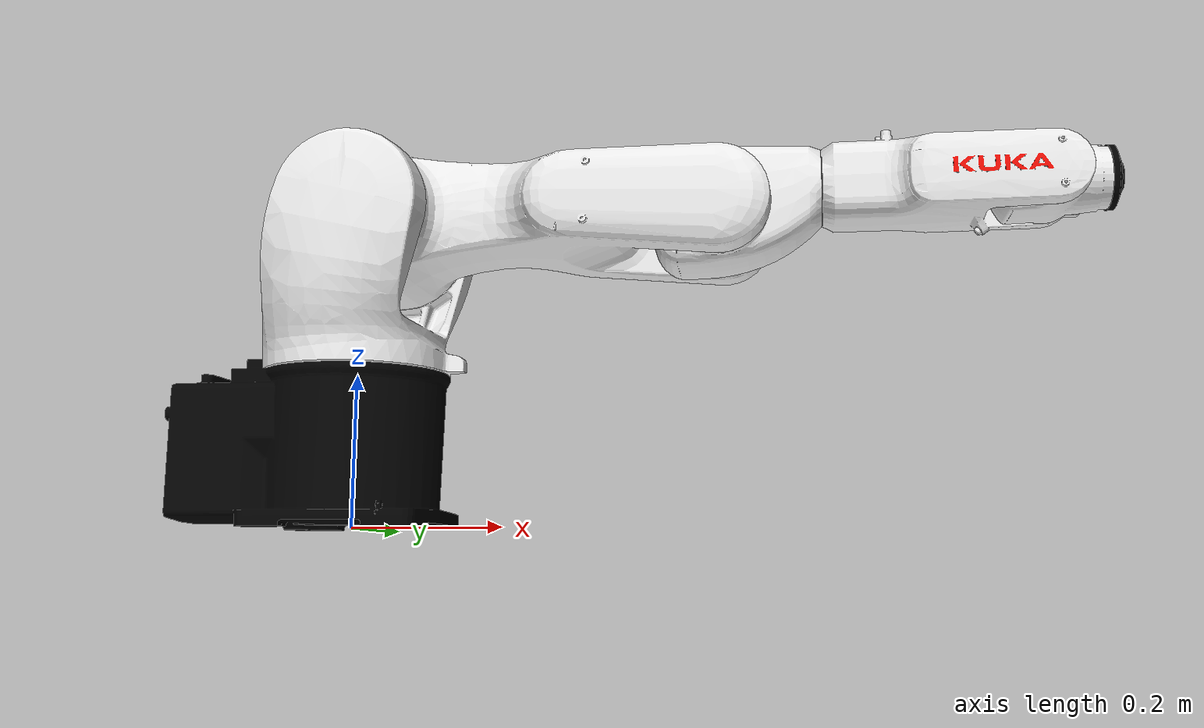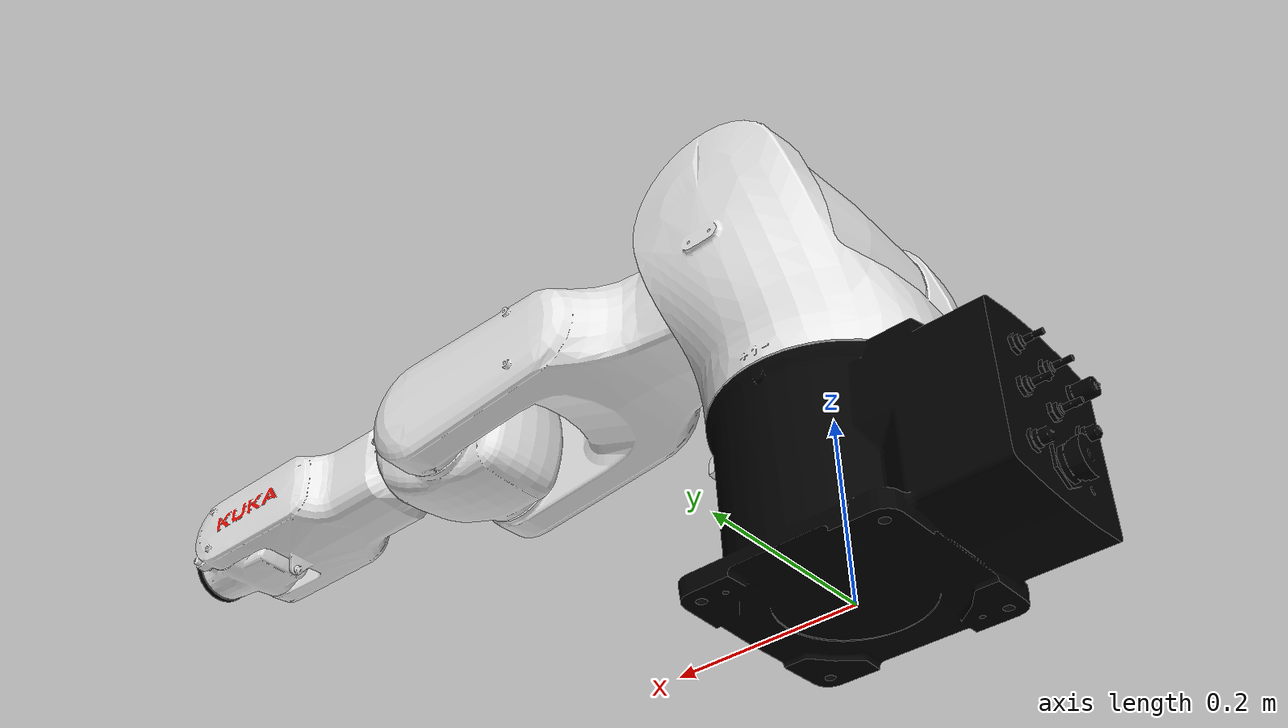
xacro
<?xml version="1.0" encoding="UTF-8"?>
<robot xmlns:xacro="http://www.ros.org/wiki/xacro" name="kr13_r900_3">
  <!-- Import urdf files  -->
  <xacro:include filename="$(find kuka_agilus_support)/urdf/kr13_r900_3_macro.xacro"/>
  <xacro:include filename="$(find kuka_agilus_support)/urdf/kr_agilus_ros2_control_macro.xacro"/>
  <!-- Basic arguments  -->
  <xacro:arg name="prefix" default=""/>
  <xacro:arg name="x" default="0"/>
  <xacro:arg name="y" default="0"/>
  <xacro:arg name="z" default="0"/>
  <xacro:arg name="roll" default="0"/>
  <xacro:arg name="pitch" default="0"/>
  <xacro:arg name="yaw" default="0"/>
  <xacro:arg name="rsi_xml_config_file" default=""/>
  <!-- kroshu-specific arguments -->
  <xacro:arg name="driver_version" default="rsi_only"/>
  <xacro:arg name="mode" default="hardware"/>
  <xacro:arg name="gpio_config" default=""/>
  <xacro:arg name="roundtrip_time" default="0"/>
  <xacro:arg name="client_ip" default="0.0.0.0"/>
  <xacro:arg name="client_port" default="59152"/>
  <xacro:arg name="mxa_client_port" default="1337"/>
  <xacro:arg name="controller_ip" default="0.0.0.0"/>
  <xacro:arg name="verify_robot_model" default="true"/>
  <xacro:kuka_agilus_ros2_control name="$(arg prefix)kr13_r900_3" driver_version="$(arg driver_version)" client_ip="$(arg client_ip)" client_port="$(arg client_port)" mxa_client_port="$(arg mxa_client_port)" controller_ip="$(arg controller_ip)" prefix="$(arg prefix)" mode="$(arg mode)" gpio_config="$(arg gpio_config)" roundtrip_time="$(arg roundtrip_time)" verify_robot_model="$(arg verify_robot_model)" rsi_xml_config_file="$(arg rsi_xml_config_file)">
    <ext_axes_ros2_control_joints/>
  </xacro:kuka_agilus_ros2_control>
  <!-- world link -->
  <link name="world"/>
  <!-- robot links, joints -->
  <xacro:kuka_kr13_r900_3_robot prefix="$(arg prefix)" package_name="kuka_agilus_support"/>
  <!-- default world - base_link joint -->
  <joint name="$(arg prefix)world-base_link" type="fixed">
    <parent link="world"/>
    <child link="$(arg prefix)base_link"/>
    <origin xyz="$(arg x) $(arg y) $(arg z)" rpy="$(arg roll) $(arg pitch) $(arg yaw)"/>
  </joint>
</robot>

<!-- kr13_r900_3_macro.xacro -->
<robot xmlns:xacro="http://www.ros.org/wiki/xacro" name="kr13_r900_3">
  <xacro:macro name="kuka_kr13_r900_3_robot" params="prefix package_name">
    <link name="${prefix}base"/>
    <link name="${prefix}base_link">
      <collision>
        <geometry>
          <mesh filename="package://${package_name}/meshes/kr13_r900_3/collision/base_link.stl"/>
        </geometry>
        <origin rpy="0.0 0.0 0.0" xyz="0.0 0.0 0.0"/>
      </collision>
      <inertial>
        <inertia ixx="0.0939" ixy="0.0" ixz="0.0" iyy="0.0714" iyz="0.0" izz="0.0982"/>
        <mass value="11.185"/>
        <origin rpy="1.576 -1.1307 3.1396" xyz="-0.0225 0.0002 0.1059"/>
      </inertial>
      <visual>
        <geometry>
          <mesh filename="package://${package_name}/meshes/kr13_r900_3/visual/base_link.dae"/>
        </geometry>
        <origin rpy="0.0 0.0 0.0" xyz="0.0 0.0 0.0"/>
      </visual>
    </link>
    <link name="${prefix}flange"/>
    <link name="${prefix}link_1">
      <collision>
        <geometry>
          <mesh filename="package://${package_name}/meshes/kr13_r900_3/collision/link_1.stl"/>
        </geometry>
        <origin rpy="-3.1415853071795867 0.0 -0.0" xyz="0.0 -1.4854441437833335e-06 0.20219999999454366"/>
      </collision>
      <inertial>
        <inertia ixx="0.1526" ixy="0.0" ixz="0.0" iyy="0.1295" iyz="0.0" izz="0.1967"/>
        <mass value="12.324"/>
        <origin rpy="0.9454 -1.4188 -0.9461" xyz="0.0043 -0.0201 -0.0963"/>
      </inertial>
      <visual>
        <geometry>
          <mesh filename="package://${package_name}/meshes/kr13_r900_3/visual/link_1.dae"/>
        </geometry>
        <origin rpy="-3.1415853071795867 0.0 -0.0" xyz="0.0 -1.4854441437833335e-06 0.20219999999454366"/>
      </visual>
    </link>
    <link name="${prefix}link_2">
      <collision>
        <geometry>
          <mesh filename="package://${package_name}/meshes/kr13_r900_3/collision/link_2.stl"/>
        </geometry>
        <origin rpy="1.5708 4.70197740325743e-38 1.5707963267948966" xyz="-0.3999995900676121 -0.024999999999999977 -0.11159998383714469"/>
      </collision>
      <inertial>
        <inertia ixx="0.6914" ixy="0.0" ixz="0.0" iyy="0.1509" iyz="0.0" izz="0.7857"/>
        <mass value="20.969"/>
        <origin rpy="-1.706 -1.4978 -3.0108" xyz="0.15 -0.0032 -0.0857"/>
      </inertial>
      <visual>
        <geometry>
          <mesh filename="package://${package_name}/meshes/kr13_r900_3/visual/link_2.dae"/>
        </geometry>
        <origin rpy="1.5708 4.70197740325743e-38 1.5707963267948966" xyz="-0.3999995900676121 -0.024999999999999977 -0.11159998383714469"/>
      </visual>
    </link>
    <link name="${prefix}link_3">
      <collision>
        <geometry>
          <mesh filename="package://${package_name}/meshes/kr13_r900_3/collision/link_3.stl"/>
        </geometry>
        <origin rpy="1.5708 -0.0 -0.0" xyz="-0.02500000000000003 0.8599995900676122 -0.06709998383714467"/>
      </collision>
      <inertial>
        <inertia ixx="0.0235" ixy="0.0" ixz="0.0" iyy="0.0155" iyz="0.0" izz="0.025"/>
        <mass value="5.35"/>
        <origin rpy="-2.9735 -0.4379 1.5724" xyz="0.0297 -0.0074 -0.0542"/>
      </inertial>
      <visual>
        <geometry>
          <mesh filename="package://${package_name}/meshes/kr13_r900_3/visual/link_3.dae"/>
        </geometry>
        <origin rpy="1.5708 -0.0 -0.0" xyz="-0.02500000000000003 0.8599995900676122 -0.06709998383714467"/>
      </visual>
    </link>
    <link name="${prefix}link_4">
      <collision>
        <geometry>
          <mesh filename="package://${package_name}/meshes/kr13_r900_3/collision/link_4.stl"/>
        </geometry>
        <origin rpy="-2.3561908169838683 1.570791132121014 -2.356194490195718" xyz="-0.8949990078585652 5.983779399313967e-07 0.15850328751486384"/>
      </collision>
      <inertial>
        <inertia ixx="0.0134" ixy="0.0" ixz="0.0" iyy="0.0561" iyz="0.0" izz="0.0609"/>
        <mass value="4.512"/>
        <origin rpy="1.733 -1.5303 -1.7275" xyz="-0.0035 0.0045 -0.1458"/>
      </inertial>
      <visual>
        <geometry>
          <mesh filename="package://${package_name}/meshes/kr13_r900_3/visual/link_4.dae"/>
        </geometry>
        <origin rpy="-2.3561908169838683 1.570791132121014 -2.356194490195718" xyz="-0.8949990078585652 5.983779399313967e-07 0.15850328751486384"/>
      </visual>
    </link>
    <link name="${prefix}link_5">
      <collision>
        <geometry>
          <mesh filename="package://${package_name}/meshes/kr13_r900_3/collision/link_5.stl"/>
        </geometry>
        <origin rpy="1.5708036732051034 -1.3492460511333464e-11 3.673218595765785e-06" xyz="-0.4400031086410806 0.894999186735418 -0.04869773032880106"/>
      </collision>
      <inertial>
        <inertia ixx="0.0045" ixy="0.0" ixz="0.0" iyy="0.0025" iyz="0.0" izz="0.0048"/>
        <mass value="2.141"/>
        <origin rpy="1.764 -1.4144 -0.1979" xyz="0.0099 -0.0006 -0.034"/>
      </inertial>
      <visual>
        <geometry>
          <mesh filename="package://${package_name}/meshes/kr13_r900_3/visual/link_5.dae"/>
        </geometry>
        <origin rpy="1.5708036732051034 -1.3492460511333464e-11 3.673218595765785e-06" xyz="-0.4400031086410806 0.894999186735418 -0.04869773032880106"/>
      </visual>
    </link>
    <link name="${prefix}link_6">
      <collision>
        <geometry>
          <mesh filename="package://${package_name}/meshes/kr13_r900_3/collision/link_6.stl"/>
        </geometry>
        <origin rpy="-2.6779399020961754 1.5707881132943111 -2.6779472485198745" xyz="-0.8949973435036404 4.1129090141640245e-06 0.5018063961415534"/>
      </collision>
      <inertial>
        <inertia ixx="0.0002" ixy="0.0" ixz="0.0" iyy="0.0002" iyz="0.0" izz="0.0003"/>
        <mass value="0.4437"/>
        <origin rpy="0.0 -0.0001 -1.5708" xyz="0.0 0.0 -0.0117"/>
      </inertial>
      <visual>
        <geometry>
          <mesh filename="package://${package_name}/meshes/kr13_r900_3/visual/link_6.dae"/>
        </geometry>
        <origin rpy="-2.6779399020961754 1.5707881132943111 -2.6779472485198745" xyz="-0.8949973435036404 4.1129090141640245e-06 0.5018063961415534"/>
      </visual>
    </link>
    <link name="${prefix}tool0"/>
    <joint name="${prefix}base_link-base" type="fixed">
      <child link="${prefix}base"/>
      <origin rpy="0.0 0.0 0.0" xyz="0.0 0.0 0.0"/>
      <parent link="${prefix}base_link"/>
    </joint>
    <joint name="${prefix}joint_1" type="revolute">
      <axis xyz="0.0 0.0 1.0"/>
      <child link="${prefix}link_1"/>
      <limit effort="234.96" lower="-2.9671" upper="2.9671" velocity="5.236"/>
      <origin rpy="-3.1416 0.0 0.0" xyz="0.0 0.0 0.2022"/>
      <parent link="${prefix}base_link"/>
    </joint>
    <joint name="${prefix}joint_2" type="revolute">
      <axis xyz="0.0 0.0 1.0"/>
      <child link="${prefix}link_2"/>
      <limit effort="264.1195" lower="-3.3161" upper="0.7854" velocity="4.0143"/>
      <origin rpy="1.5708 0.0 0.0" xyz="0.025 -0.1116 -0.1978"/>
      <parent link="${prefix}link_1"/>
    </joint>
    <joint name="${prefix}joint_3" type="revolute">
      <axis xyz="0.0 0.0 1.0"/>
      <child link="${prefix}link_3"/>
      <limit effort="109.0239" lower="-2.0944" upper="2.7576" velocity="5.7596"/>
      <origin rpy="0.0 0.0 0.0" xyz="0.46 0.0 -0.0445"/>
      <parent link="${prefix}link_2"/>
    </joint>
    <joint name="${prefix}joint_4" type="revolute">
      <axis xyz="0.0 0.0 1.0"/>
      <child link="${prefix}link_4"/>
      <limit effort="37.3955" lower="-3.4907" upper="3.4907" velocity="8.3776"/>
      <origin rpy="1.5708 0.0 -1.5708" xyz="0.1335 -0.035 -0.0671"/>
      <parent link="${prefix}link_3"/>
    </joint>
    <joint name="${prefix}joint_5" type="revolute">
      <axis xyz="0.0 0.0 1.0"/>
      <child link="${prefix}link_5"/>
      <limit effort="28.7088" lower="-2.0944" upper="2.0944" velocity="6.9813"/>
      <origin rpy="0.0 1.5708 1.5708" xyz="0.0 0.0487 -0.2815"/>
      <parent link="${prefix}link_4"/>
    </joint>
    <joint name="${prefix}joint_6" type="revolute">
      <axis xyz="0.0 0.0 1.0"/>
      <child link="${prefix}link_6"/>
      <limit effort="23.0072" lower="-6.1959" upper="6.1959" velocity="10.472"/>
      <origin rpy="1.5708 0.0 -1.5708" xyz="0.0618 0.0 -0.0487"/>
      <parent link="${prefix}link_5"/>
    </joint>
    <joint name="${prefix}link_6-flange" type="fixed">
      <child link="${prefix}flange"/>
      <origin rpy="0.0 1.5708 0.0" xyz="0.0 0.0 -0.0282"/>
      <parent link="${prefix}link_6"/>
    </joint>
    <joint name="${prefix}link_6-tool0" type="fixed">
      <child link="${prefix}tool0"/>
      <origin rpy="3.1416 -0.0 3.1416" xyz="0.0 0.0 -0.0282"/>
      <parent link="${prefix}link_6"/>
    </joint>
  </xacro:macro>
</robot>
